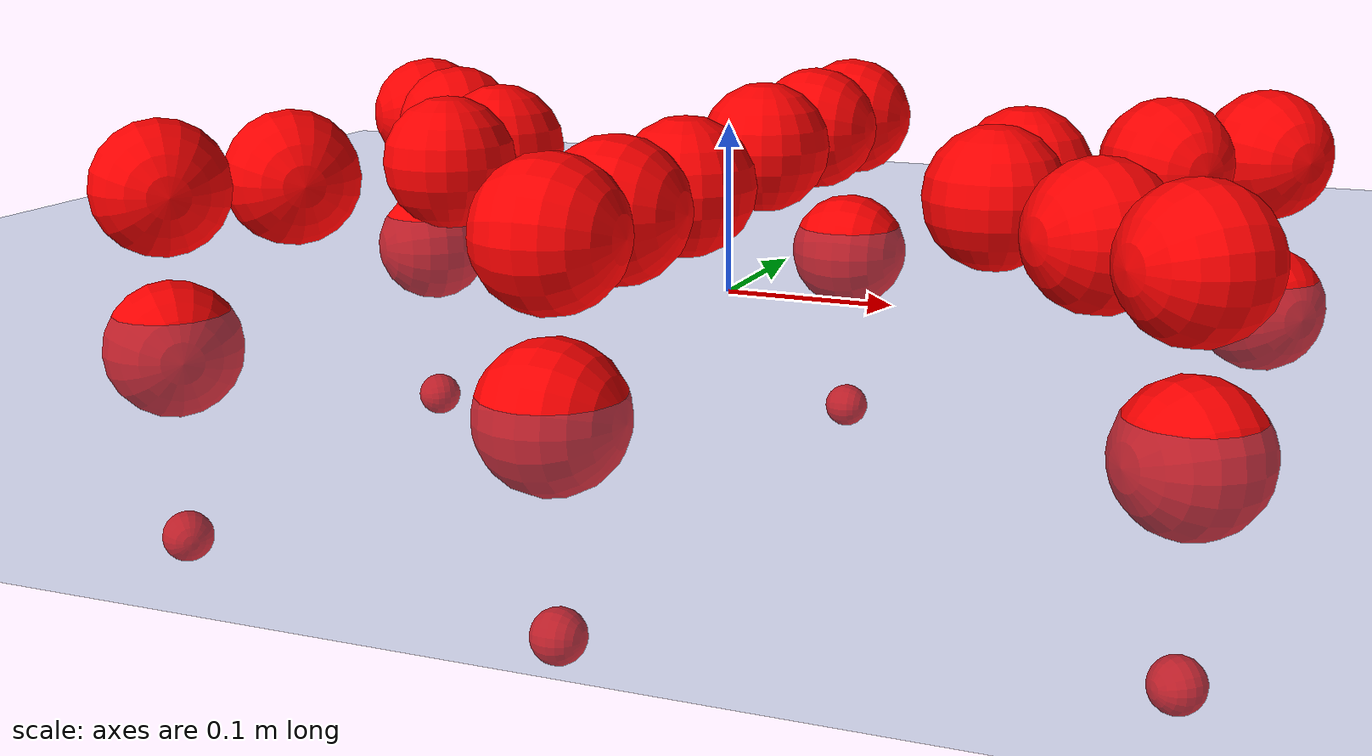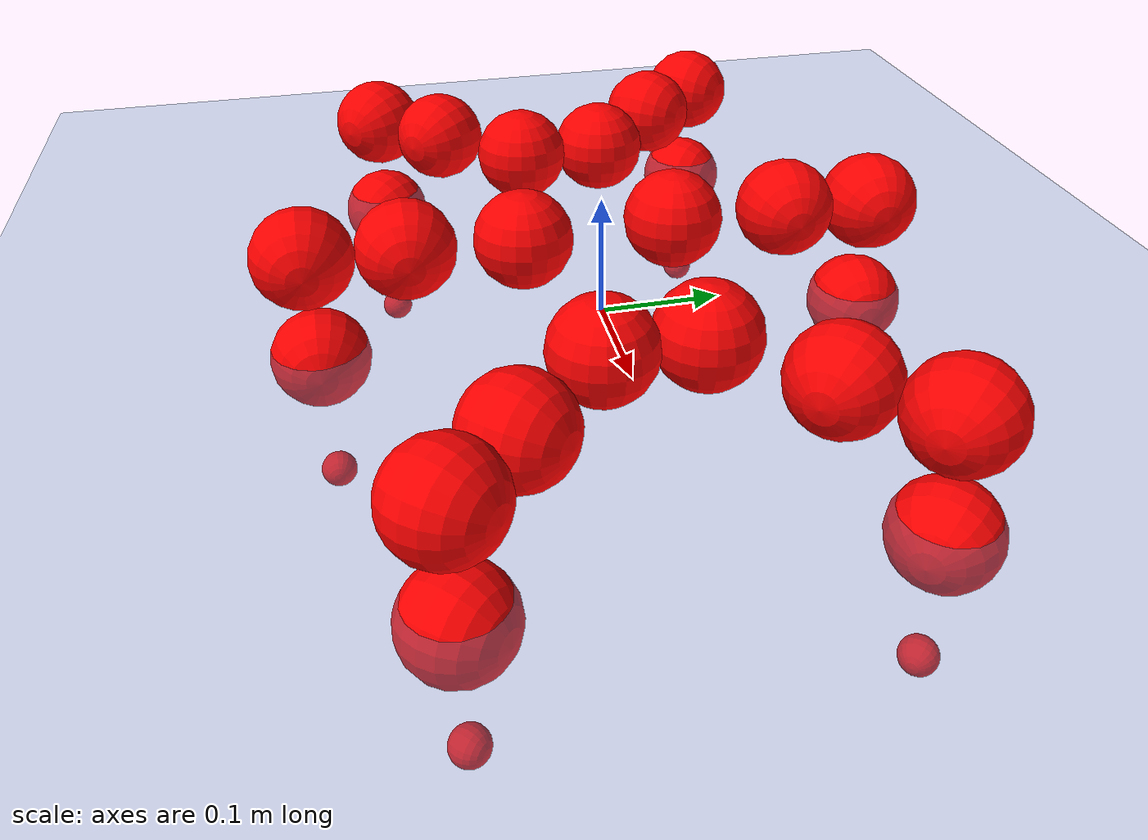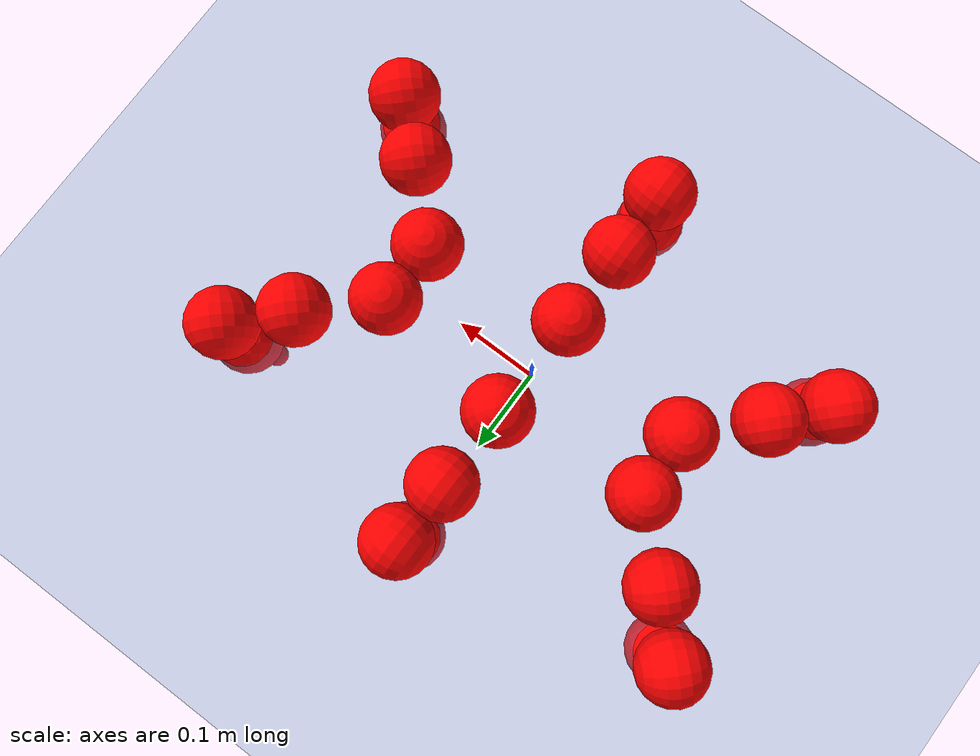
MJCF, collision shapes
<mujoco model="Golem">
  <compiler angle="radian" assetdir="assets" balanceinertia="true" inertiafromgeom="false"/>

  <option timestep="0.005" density="1.2" viscosity="2e-05"/>

  <size nkey="1"/>

  <visual>
    <quality shadowsize="8192"/>
    <map shadowclip="0.5"/>
  </visual>

  <default>
    <default class="/">
      <joint armature="0.01" damping="0.01" frictionloss="0.01"/>
      <geom contype="0" conaffinity="0" group="1" solref="-1000 -80"/>
      <site size="0.01 0.005 0.005" group="5"/>
      <general forcelimited="true" biastype="affine" gainprm="25" biasprm="0 -25 -0.5"/>
      <default class="visual">
        <geom type="mesh" group="2"/>
      </default>
      <default class="collision">
        <geom group="3"/>
      </default>
      <default class="foot">
        <geom size="0.01 0 0" condim="6" group="4" priority="1" solimp="0.015 1 0.01"/>
      </default>
      <default class="reward_collision_sphere">
        <geom group="5" rgba="1 0 0 1"/>
      </default>
    </default>
  </default>

  <asset>
    <texture type="skybox" colorspace="auto" name="//unnamed_texture_0" builtin="gradient" rgb1="0.95 0.95 0.95" rgb2="0.95 0.95 0.95" width="100" height="600"/>
    <texture type="2d" colorspace="auto" name="texplane" builtin="checker" rgb1="0.345 0.575 0.748" rgb2="0.345 0.575 0.748" markrgb="1 1 1" width="512" height="512"/>
    <material name="MatPlane" class="/" texture="texplane" texuniform="true" texrepeat="2 2" specular="0.9"/>
    <mesh name="body" class="/" file="body.stl" scale="0.001 0.001 0.001"/>
    <mesh name="coxa" class="/" file="coxa.stl" scale="0.001 0.001 0.001"/>
    <mesh name="femur" class="/" file="femur.stl" scale="0.001 0.001 0.001"/>
    <mesh name="tibia" class="/" file="tibia.stl" scale="0.001 0.001 0.001"/>
    <mesh name="tarsus" class="/" file="tarsus.stl" scale="0.001 0.001 0.001"/>
  </asset>

  <worldbody>
    <geom name="floor" class="/" size="100 100 0.125" type="plane" group="0" material="MatPlane"/>
    <light name="toplight_shadow" class="/" pos="0 0 5" dir="0.0990148 0.0990148 -0.990148" type="directional" ambient="0.04 0.04 0.04" diffuse="0.55 0.55 0.55" specular="0.12 0.12 0.12"/>
    <light name="toplight_fill" class="/" pos="0 0 5" dir="0.0990148 0.0990148 -0.990148" type="directional" castshadow="false" ambient="0.04 0.04 0.04" diffuse="0.3 0.3 0.3" specular="0.08 0.08 0.08"/>
    <body name="trunk" pos="-0.00152647 -0.000616136 -0.00231123" quat="1 0.000226284 0.00014128 -5.82449e-05">
      <inertial pos="0.00237484 -0.00046109 -8.81719e-05" quat="0.999907 -0.00565194 -0.00651355 0.0105767" mass="3.68479" diaginertia="0.0129905 0.00181752 0.025083"/>
      <joint name="//unnamed_joint_0" type="free"/>
      <geom name="//unnamed_geom_1" class="/" pos="0 0 0.0768637" quat="1 0 0 0" type="mesh" rgba="0.9 0.9 0.9 1" mesh="body"/>
      <site name="imu" class="/" pos="0.134388 0.00452925 0.119074" size="0.00989629"/>
      <camera name="track" class="/" pos="0 -1.4146 0" quat="0.707107 0.707107 0 0" mode="trackcom"/>
      <camera name="ego_camera" class="/" pos="0.137877 0 0.1201" quat="-0.5 -0.5 0.5 0.5"/>
      <body name="coxa_RR" pos="-0.186722 -0.0574444 0.0757412" quat="0.382598 -0.000284818 -0.00017854 -0.923915">
        <inertial pos="-0.000852325 -0.00235892 -0.000368069" quat="0.999992 0.00271909 -0.00265163 0.0015514" mass="0.189465" diaginertia="0.0126849 0.00178996 0.0245031"/>
        <joint name="coxa_joint_RR" class="/" pos="0 0 0" axis="0.00418204 -0.00195547 -0.999989" stiffness="0.00661351" range="-3.14287 3.08737" armature="0.00885945" damping="0.00533985" frictionloss="0.0093747"/>
        <geom name="//unnamed_geom_2" class="/" type="mesh" rgba="0.2 0.2 0.2 1" mesh="coxa"/>
        <geom name="//unnamed_geom_3" class="reward_collision_sphere" size="0.0395852" pos="-0.0318177 0 0"/>
        <body name="femur_RR" pos="0.0619663 0.00158164 -0.00270479" quat="0.500006 -0.500028 0.499675 0.500291">
          <inertial pos="0.000687539 0.00192327 -0.00202028" quat="0.999998 -0.00069688 1.00422e-05 0.00207431" mass="0.1945" diaginertia="0.0134977 0.00180005 0.0253053"/>
          <joint name="femur_joint_RR" class="/" pos="0 0 0" axis="0.000997644 0.000498229 -0.999999" range="-3.14875 3.08672" armature="0.00859282" damping="0.00127255" frictionloss="0.0112327"/>
          <geom name="//unnamed_geom_4" class="/" type="mesh" rgba="0.9 0.9 0.9 1" mesh="femur"/>
          <geom name="//unnamed_geom_5" class="reward_collision_sphere" size="0.0395852"/>
          <body name="tibia_RR" pos="0.000623424 -0.0737116 0.00325306" quat="-0.000648188 1 -9.37887e-06 0.000523745">
            <inertial pos="-0.00271193 -0.0021713 -0.000174144" quat="0.999903 -0.00943404 0.0102107 -0.000333575" mass="0.19405" diaginertia="0.0131038 0.00180843 0.0256223"/>
            <joint name="tibia_joint_RR" class="/" pos="0 0 0" axis="-0.00382761 -0.00677477 0.99997" stiffness="0.00442753" range="-3.1887 3.11879" armature="0.00865141" damping="0" frictionloss="0.00943358"/>
            <geom name="//unnamed_geom_6" class="/" type="mesh" rgba="0.2 0.2 0.2 1" mesh="tibia"/>
            <geom name="//unnamed_geom_7" class="reward_collision_sphere" size="0.0395852"/>
            <body name="tarsus_RR" pos="0.0927495 -0.000529662 -0.0017866" quat="1 8.28238e-05 -7.68439e-05 0.000155867">
              <inertial pos="0.0622701 0.00296117 -0.00259074" quat="0.497198 0.501701 0.499325 0.501762" mass="0.192713" diaginertia="0.0131794 0.0017891 0.0245733"/>
              <joint name="tarsus_joint_RR" class="/" pos="0 0 0" axis="0.00272792 0.00213816 0.999994" range="-3.16307 3.14049" armature="0.0113925" damping="0.0031442" frictionloss="0.0112871"/>
              <geom name="//unnamed_geom_8" class="/" type="mesh" rgba="0.9 0.9 0.9 1" mesh="tarsus"/>
              <geom name="foot_1" class="foot" size="0.00877774" pos="0.118786 0 0" quat="0 -0.707107 0 0.707107"/>
              <geom name="//unnamed_geom_10" class="reward_collision_sphere" size="0.0395852"/>
              <geom name="//unnamed_geom_11" class="reward_collision_sphere" size="0.0148444" pos="0.114014 0 0"/>
              <site name="foot_1" class="foot" pos="0.118786 0 0" quat="0 -0.707107 0 0.707107" size="0.00989629"/>
            </body>
          </body>
        </body>
      </body>
      <body name="coxa_RM" pos="0.000510598 -0.0936463 0.0755492" quat="0.706441 6.16221e-05 0.000525184 -0.707772">
        <inertial pos="-0.00269672 -2.6473e-05 -0.0010846" quat="0.999986 -0.00200256 -0.0040821 0.00282588" mass="0.189067" diaginertia="0.0132643 0.00172842 0.0248221"/>
        <joint name="coxa_joint_RM" class="/" pos="0 0 0" axis="-0.00112375 0.000147474 -0.999999" range="-3.18111 3.13291" armature="0.00960419" damping="0.0112945" frictionloss="0.00986707"/>
        <geom name="//unnamed_geom_12" class="/" type="mesh" rgba="0.2 0.2 0.2 1" mesh="coxa"/>
        <geom name="//unnamed_geom_13" class="reward_collision_sphere" size="0.0395852" pos="-0.0318177 0 0"/>
        <body name="femur_RM" pos="0.0593575 1.44122e-05 0.00231411" quat="0.499601 -0.499712 0.499531 0.501154">
          <inertial pos="0.00133813 -0.00124537 0.000904519" quat="0.999906 -0.00806443 0.00769157 0.00802791" mass="0.199906" diaginertia="0.0138618 0.00176826 0.0261107"/>
          <joint name="femur_joint_RM" class="/" pos="0 0 0" axis="-0.000494145 -0.00203751 -0.999998" range="-3.14779 3.13313" armature="0.00946221" damping="0.00651808" frictionloss="0.00941562"/>
          <geom name="//unnamed_geom_14" class="/" type="mesh" rgba="0.9 0.9 0.9 1" mesh="femur"/>
          <geom name="//unnamed_geom_15" class="reward_collision_sphere" size="0.0395852"/>
          <body name="tibia_RM" pos="-0.00252436 -0.0773354 0.00197674" quat="0.000318869 1 -0.0003573 -0.000359674">
            <inertial pos="-0.000597591 0.00174056 -0.000111681" quat="0.999994 0.00078447 0.00305388 0.001231" mass="0.199765" diaginertia="0.0138431 0.00182058 0.0264102"/>
            <joint name="tibia_joint_RM" class="/" pos="0 0 0" axis="-0.0104109 0.00204982 0.999944" range="-3.08708 3.10546" armature="0.0107664" damping="0.00146622" frictionloss="0.00969153"/>
            <geom name="//unnamed_geom_16" class="/" type="mesh" rgba="0.2 0.2 0.2 1" mesh="tibia"/>
            <geom name="//unnamed_geom_17" class="reward_collision_sphere" size="0.0395852"/>
            <body name="tarsus_RM" pos="0.0907808 -0.00257322 0.00271165" quat="0.999999 -0.000214329 0.00131952 -0.000329287">
              <inertial pos="0.0648164 0.00249314 0.00097306" quat="0.499237 0.499201 0.500899 0.50066" mass="0.182412" diaginertia="0.0128928 0.00169365 0.0236176"/>
              <joint name="tarsus_joint_RM" class="/" pos="0 0 0" axis="-0.0026272 -0.0106972 0.999939" stiffness="0.00187136" range="-3.14862 3.15537" armature="0.0109748" damping="0.00413545" frictionloss="0.00996222"/>
              <geom name="//unnamed_geom_18" class="/" type="mesh" rgba="0.9 0.9 0.9 1" mesh="tarsus"/>
              <geom name="foot_2" class="foot" size="0.0102762" pos="0.118786 0 0" quat="0 -0.707107 0 0.707107"/>
              <geom name="//unnamed_geom_20" class="reward_collision_sphere" size="0.0395852"/>
              <geom name="//unnamed_geom_21" class="reward_collision_sphere" size="0.0148444" pos="0.114014 0 0"/>
              <site name="foot_2" class="foot" pos="0.118786 0 0" quat="0 -0.707107 0 0.707107" size="0.00989629"/>
            </body>
          </body>
        </body>
      </body>
      <body name="coxa_RF" pos="0.191677 -0.0603769 0.0762138" quat="0.92384 -0.0012356 -0.000395946 -0.382777">
        <inertial pos="-0.00273211 -0.000596789 0.00289754" quat="0.99994 -0.0084516 0.00150484 0.00681029" mass="0.198474" diaginertia="0.013277 0.00177047 0.0246949"/>
        <joint name="coxa_joint_RF" class="/" pos="0 0 0" axis="-0.00278856 0.00570648 -0.99998" range="-3.18529 3.13977" armature="0.00838481" damping="0.0184143" frictionloss="0.0111028"/>
        <geom name="//unnamed_geom_22" class="/" type="mesh" rgba="0.2 0.2 0.2 1" mesh="coxa"/>
        <geom name="//unnamed_geom_23" class="reward_collision_sphere" size="0.0395852" pos="-0.0318177 0 0"/>
        <body name="femur_RF" pos="0.065006 0.000334258 -0.00296776" quat="0.499291 -0.499468 0.500187 0.501052">
          <inertial pos="0.0013641 -0.00174835 -0.000926196" quat="0.999986 -0.00476957 -0.000516918 -0.00224985" mass="0.182551" diaginertia="0.0134987 0.00172314 0.0237012"/>
          <joint name="femur_joint_RF" class="/" pos="0 0 0" axis="0.000825881 0.0017556 -0.999998" range="-3.11981 3.08837" armature="0.00909441" damping="0" frictionloss="0.00887356"/>
          <geom name="//unnamed_geom_24" class="/" type="mesh" rgba="0.9 0.9 0.9 1" mesh="femur"/>
          <geom name="//unnamed_geom_25" class="reward_collision_sphere" size="0.0395852"/>
          <body name="tibia_RF" pos="-0.000873017 -0.0737636 0.00227195" quat="-8.72301e-06 1 -0.000154648 1.00528e-06">
            <inertial pos="-0.00229351 0.000622545 -8.90755e-06" quat="0.999998 -0.000590958 0.00197325 -0.000108846" mass="0.185637" diaginertia="0.0125417 0.00171717 0.0241935"/>
            <joint name="tibia_joint_RF" class="/" pos="0 0 0" axis="0.010547 -0.0050402 0.999932" range="-3.09153 3.12981" armature="0.00990729" damping="0" frictionloss="0.0110189"/>
            <geom name="//unnamed_geom_26" class="/" type="mesh" rgba="0.2 0.2 0.2 1" mesh="tibia"/>
            <geom name="//unnamed_geom_27" class="reward_collision_sphere" size="0.0395852"/>
            <body name="tarsus_RF" pos="0.0926275 0.00049591 -0.00266359" quat="0.999999 3.70895e-05 -0.00130676 0.000331108">
              <inertial pos="0.0611719 -0.00227232 -3.4953e-05" quat="0.500898 0.497233 0.494909 0.506879" mass="0.187746" diaginertia="0.0130812 0.00178839 0.0237334"/>
              <joint name="tarsus_joint_RF" class="/" pos="0 0 0" axis="-0.00712632 -0.00892016 0.999935" range="-3.13305 3.13619" armature="0.00874688" damping="0" frictionloss="0.00852095"/>
              <geom name="//unnamed_geom_28" class="/" type="mesh" rgba="0.9 0.9 0.9 1" mesh="tarsus"/>
              <geom name="foot_3" class="foot" size="0.00987205" pos="0.118786 0 0" quat="0 -0.707107 0 0.707107"/>
              <geom name="//unnamed_geom_30" class="reward_collision_sphere" size="0.0395852"/>
              <geom name="//unnamed_geom_31" class="reward_collision_sphere" size="0.0148444" pos="0.114014 0 0"/>
              <site name="foot_3" class="foot" pos="0.118786 0 0" quat="0 -0.707107 0 0.707107" size="0.00989629"/>
            </body>
          </body>
        </body>
      </body>
      <body name="coxa_LR" pos="-0.191091 0.0602775 0.074451" quat="0.382584 -0.000104537 -4.90981e-05 0.923921">
        <inertial pos="0.00111563 -0.000198252 0.000996386" quat="0.999928 -0.00586619 -0.00683125 0.00791096" mass="0.19245" diaginertia="0.0135008 0.00183446 0.0249886"/>
        <joint name="coxa_joint_LR" class="/" pos="0 0 0" axis="0.00492198 0.0128452 -0.999905" stiffness="0.0133027" range="-3.14803 3.17127" armature="0.0113536" damping="0.00797994" frictionloss="0.0102387"/>
        <geom name="//unnamed_geom_32" class="/" type="mesh" rgba="0.2 0.2 0.2 1" mesh="coxa"/>
        <geom name="//unnamed_geom_33" class="reward_collision_sphere" size="0.0395852" pos="-0.0318177 0 0"/>
        <body name="femur_LR" pos="0.0632075 0.00195671 0.00205542" quat="0.499355 -0.500552 0.500699 0.499393">
          <inertial pos="-0.00274045 -0.00246891 0.00238039" quat="1 -0.000167416 -0.00051995 -0.000175267" mass="0.20485" diaginertia="0.0140804 0.00187446 0.0254605"/>
          <joint name="femur_joint_LR" class="/" pos="0 0 0" axis="0.0125386 0.000510517 0.999921" range="-3.19432 3.08319" armature="0.0107399" damping="0" frictionloss="0.00851218"/>
          <geom name="//unnamed_geom_34" class="/" type="mesh" rgba="0.9 0.9 0.9 1" mesh="femur"/>
          <geom name="//unnamed_geom_35" class="reward_collision_sphere" size="0.0395852"/>
          <body name="tibia_LR" pos="0.00200618 -0.0800906 -0.00143301" quat="6.52059e-05 1 -0.000198625 0.000480529">
            <inertial pos="-0.000456369 -0.00248826 0.000587889" quat="0.999954 0.0041559 0.00840868 -0.00194434" mass="0.180693" diaginertia="0.0125796 0.00175489 0.0234419"/>
            <joint name="tibia_joint_LR" class="/" pos="0 0 0" axis="0.0129475 -0.000772317 -0.999916" range="-3.13833 3.0851" armature="0.00988664" damping="0" frictionloss="0.0112242"/>
            <geom name="//unnamed_geom_36" class="/" type="mesh" rgba="0.2 0.2 0.2 1" mesh="tibia"/>
            <geom name="//unnamed_geom_37" class="reward_collision_sphere" size="0.0395852"/>
            <body name="tarsus_LR" pos="0.095674 -0.00173726 -0.00220194" quat="0.999999 -0.000873161 0.000972426 -5.76149e-05">
              <inertial pos="0.0621122 0.00202462 -0.00270553" quat="0.500993 0.500443 0.49914 0.499421" mass="0.188366" diaginertia="0.0135006 0.00182786 0.0249217"/>
              <joint name="tarsus_joint_LR" class="/" pos="0 0 0" axis="-0.00714043 0.00324371 -0.999969" range="-3.19792 3.15897" armature="0.00845457" damping="0.029219" frictionloss="0.009984"/>
              <geom name="//unnamed_geom_38" class="/" type="mesh" rgba="0.9 0.9 0.9 1" mesh="tarsus"/>
              <geom name="foot_4" class="foot" size="0.00981613" pos="0.118786 0 0" quat="0.707107 0 -0.707107 0"/>
              <geom name="//unnamed_geom_40" class="reward_collision_sphere" size="0.0395852"/>
              <geom name="//unnamed_geom_41" class="reward_collision_sphere" size="0.0148444" pos="0.114014 0 0"/>
              <site name="foot_4" class="foot" pos="0.118786 0 0" quat="0.707107 0 -0.707107 0" size="0.00989629"/>
            </body>
          </body>
        </body>
      </body>
      <body name="coxa_LM" pos="0.00187976 0.0911049 0.0805778" quat="0.707013 8.75391e-05 -2.32626e-05 0.707201">
        <inertial pos="0.00280992 0.000640552 0.00148501" quat="0.999951 -0.00728626 -0.00329498 -0.00578491" mass="0.188625" diaginertia="0.0140075 0.00175161 0.0251728"/>
        <joint name="coxa_joint_LM" class="/" pos="0 0 0" axis="-0.00131296 -0.0119573 -0.999928" range="-3.10915 3.18089" armature="0.00982575" damping="0.00103177" frictionloss="0.00962482"/>
        <geom name="//unnamed_geom_42" class="/" type="mesh" rgba="0.2 0.2 0.2 1" mesh="coxa"/>
        <geom name="//unnamed_geom_43" class="reward_collision_sphere" size="0.0395852" pos="-0.0318177 0 0"/>
        <body name="femur_LM" pos="0.0625668 -0.000828568 -0.000644515" quat="0.500355 -0.498763 0.500266 0.500613">
          <inertial pos="0.0028066 0.00104981 -0.00269249" quat="0.999998 0.000837003 -0.00131814 -0.00120742" mass="0.206857" diaginertia="0.013999 0.00183111 0.0267771"/>
          <joint name="femur_joint_LM" class="/" pos="0 0 0" axis="-0.00128287 0.0130611 0.999914" stiffness="0.00906009" range="-3.19126 3.0875" armature="0.0101455" damping="0.0102053" frictionloss="0.0112226"/>
          <geom name="//unnamed_geom_44" class="/" type="mesh" rgba="0.9 0.9 0.9 1" mesh="femur"/>
          <geom name="//unnamed_geom_45" class="reward_collision_sphere" size="0.0395852"/>
          <body name="tibia_LM" pos="0.00106713 -0.0730302 -0.00214104" quat="1.22923e-08 1 2.42688e-06 -0.000135321">
            <inertial pos="0.00286594 0.000607943 0.00013558" quat="0.999991 0.00421793 -0.000642233 0.000645596" mass="0.202534" diaginertia="0.0137208 0.00177351 0.0264681"/>
            <joint name="tibia_joint_LM" class="/" pos="0 0 0" axis="-0.00665897 -0.0111433 -0.999916" range="-3.13793 3.14386" armature="0.00854847" damping="0" frictionloss="0.00980667"/>
            <geom name="//unnamed_geom_46" class="/" type="mesh" rgba="0.2 0.2 0.2 1" mesh="tibia"/>
            <geom name="//unnamed_geom_47" class="reward_collision_sphere" size="0.0395852"/>
            <body name="tarsus_LM" pos="0.0951254 -0.000823776 -0.000876202" quat="1 2.62851e-06 -4.09507e-06 -1.0622e-05">
              <inertial pos="0.0641744 0.000413089 0.00281032" quat="0.499194 0.507444 0.498269 0.49501" mass="0.189968" diaginertia="0.0130495 0.00183197 0.0248214"/>
              <joint name="tarsus_joint_LM" class="/" pos="0 0 0" axis="-0.00391139 -0.00821464 -0.999959" range="-3.1499 3.13648" armature="0.0102689" damping="0.0150793" frictionloss="0.00978909"/>
              <geom name="//unnamed_geom_48" class="/" type="mesh" rgba="0.9 0.9 0.9 1" mesh="tarsus"/>
              <geom name="foot_5" class="foot" size="0.00923786" pos="0.118786 0 0" quat="0.707107 0 -0.707107 0"/>
              <geom name="//unnamed_geom_50" class="reward_collision_sphere" size="0.0395852"/>
              <geom name="//unnamed_geom_51" class="reward_collision_sphere" size="0.0148444" pos="0.114014 0 0"/>
              <site name="foot_5" class="foot" pos="0.118786 0 0" quat="0.707107 0 -0.707107 0" size="0.00989629"/>
            </body>
          </body>
        </body>
      </body>
      <body name="coxa_LF" pos="0.191235 0.0574631 0.0769792" quat="0.923634 -0.000414653 -0.000982902 0.383273">
        <inertial pos="-0.00040016 0.000565381 0.00291476" quat="1 0.000280218 0.000261894 0.000180425" mass="0.191203" diaginertia="0.0136348 0.00170854 0.0247179"/>
        <joint name="coxa_joint_LF" class="/" pos="0 0 0" axis="0.000494119 -0.0159279 -0.999873" range="-3.15801 3.11687" armature="0.00941913" damping="0.0230057" frictionloss="0.00850425"/>
        <geom name="//unnamed_geom_52" class="/" type="mesh" rgba="0.2 0.2 0.2 1" mesh="coxa"/>
        <geom name="//unnamed_geom_53" class="reward_collision_sphere" size="0.0395852" pos="-0.0318177 0 0"/>
        <body name="femur_LF" pos="0.0649298 -0.00180066 5.77996e-05" quat="0.499957 -0.500519 0.499858 0.499666">
          <inertial pos="6.105e-05 -0.000175095 0.00259414" quat="0.99991 -0.00596214 0.0112205 0.00419247" mass="0.198086" diaginertia="0.0129637 0.00177822 0.0249211"/>
          <joint name="femur_joint_LF" class="/" pos="0 0 0" axis="-0.0156041 -0.000924191 0.999878" stiffness="0.00120034" range="-3.16261 3.1442" armature="0.00967731" damping="0.00617508" frictionloss="0.011245"/>
          <geom name="//unnamed_geom_54" class="/" type="mesh" rgba="0.9 0.9 0.9 1" mesh="femur"/>
          <geom name="//unnamed_geom_55" class="reward_collision_sphere" size="0.0395852"/>
          <body name="tibia_LF" pos="-0.000262376 -0.0760488 0.00260774" quat="-0.000888642 0.999999 0.000697799 -0.000169627">
            <inertial pos="-0.000674224 -0.000249934 -0.00254094" quat="0.999925 -0.00602345 -0.00307855 -0.0101685" mass="0.202207" diaginertia="0.0140036 0.00176773 0.0249511"/>
            <joint name="tibia_joint_LF" class="/" pos="0 0 0" axis="0.00163653 -0.000181054 -0.999999" range="-3.10399 3.16992" armature="0.010341" damping="0.0154232" frictionloss="0.00994438"/>
            <geom name="//unnamed_geom_56" class="/" type="mesh" rgba="0.2 0.2 0.2 1" mesh="tibia"/>
            <geom name="//unnamed_geom_57" class="reward_collision_sphere" size="0.0395852"/>
            <body name="tarsus_LF" pos="0.0953427 0.00325934 -0.00127112" quat="1 -0.000623769 0.0002799 0.000650411">
              <inertial pos="0.0617199 -0.000194196 0.000489003" quat="0.500088 0.500238 0.500005 0.499669" mass="0.182164" diaginertia="0.0126626 0.00166088 0.024788"/>
              <joint name="tarsus_joint_LF" class="/" pos="0 0 0" axis="-0.000788424 -0.0144641 -0.999895" range="-3.14285 3.08263" armature="0.01133" damping="0.02113" frictionloss="0.0108724"/>
              <geom name="//unnamed_geom_58" class="/" type="mesh" rgba="0.9 0.9 0.9 1" mesh="tarsus"/>
              <geom name="foot_6" class="foot" size="0.00984715" pos="0.118786 0 0" quat="0.707107 0 -0.707107 0"/>
              <geom name="//unnamed_geom_60" class="reward_collision_sphere" size="0.0395852"/>
              <geom name="//unnamed_geom_61" class="reward_collision_sphere" size="0.0148444" pos="0.114014 0 0"/>
              <site name="foot_6" class="foot" pos="0.118786 0 0" quat="0.707107 0 -0.707107 0" size="0.00989629"/>
            </body>
          </body>
        </body>
      </body>
    </body>
  </worldbody>

  <contact>
    <pair class="/" geom1="floor" geom2="foot_1" name="//unnamed_contact_0"/>
    <pair class="/" geom1="floor" geom2="foot_2" name="//unnamed_contact_1"/>
    <pair class="/" geom1="floor" geom2="foot_3" name="//unnamed_contact_2"/>
    <pair class="/" geom1="floor" geom2="foot_4" name="//unnamed_contact_3"/>
    <pair class="/" geom1="floor" geom2="foot_5" name="//unnamed_contact_4"/>
    <pair class="/" geom1="floor" geom2="foot_6" name="//unnamed_contact_5"/>
  </contact>

  <actuator>
    <general name="coxa_joint_RR" class="/" joint="coxa_joint_RR" forcerange="-7.89285 7.89285" gainprm="23.3383" biasprm="0 -23.3383 -0.510032"/>
    <general name="femur_joint_RR" class="/" joint="femur_joint_RR" forcerange="-7.97593 7.97593" gainprm="23.3383" biasprm="0 -23.3383 -0.510032"/>
    <general name="tibia_joint_RR" class="/" joint="tibia_joint_RR" forcerange="-6.46578 6.46578" gainprm="23.3383" biasprm="0 -23.3383 -0.510032"/>
    <general name="tarsus_joint_RR" class="/" joint="tarsus_joint_RR" forcerange="-6.4638 6.4638" gainprm="23.3383" biasprm="0 -23.3383 -0.510032"/>
    <general name="coxa_joint_RM" class="/" joint="coxa_joint_RM" forcerange="-6.53014 6.53014" gainprm="23.3383" biasprm="0 -23.3383 -0.510032"/>
    <general name="femur_joint_RM" class="/" joint="femur_joint_RM" forcerange="-6.97195 6.97195" gainprm="23.3383" biasprm="0 -23.3383 -0.510032"/>
    <general name="tibia_joint_RM" class="/" joint="tibia_joint_RM" forcerange="-7.07699 7.07699" gainprm="23.3383" biasprm="0 -23.3383 -0.510032"/>
    <general name="tarsus_joint_RM" class="/" joint="tarsus_joint_RM" forcerange="-7.30868 7.30868" gainprm="23.3383" biasprm="0 -23.3383 -0.510032"/>
    <general name="coxa_joint_RF" class="/" joint="coxa_joint_RF" forcerange="-6.97558 6.97558" gainprm="23.3383" biasprm="0 -23.3383 -0.510032"/>
    <general name="femur_joint_RF" class="/" joint="femur_joint_RF" forcerange="-7.72891 7.72891" gainprm="23.3383" biasprm="0 -23.3383 -0.510032"/>
    <general name="tibia_joint_RF" class="/" joint="tibia_joint_RF" forcerange="-7.896 7.896" gainprm="23.3383" biasprm="0 -23.3383 -0.510032"/>
    <general name="tarsus_joint_RF" class="/" joint="tarsus_joint_RF" forcerange="-7.94623 7.94623" gainprm="23.3383" biasprm="0 -23.3383 -0.510032"/>
    <general name="coxa_joint_LR" class="/" joint="coxa_joint_LR" forcerange="-7.13947 7.13947" gainprm="23.3383" biasprm="0 -23.3383 -0.510032"/>
    <general name="femur_joint_LR" class="/" joint="femur_joint_LR" forcerange="-7.36286 7.36286" gainprm="23.3383" biasprm="0 -23.3383 -0.510032"/>
    <general name="tibia_joint_LR" class="/" joint="tibia_joint_LR" forcerange="-7.7755 7.7755" gainprm="23.3383" biasprm="0 -23.3383 -0.510032"/>
    <general name="tarsus_joint_LR" class="/" joint="tarsus_joint_LR" forcerange="-7.89493 7.89493" gainprm="23.3383" biasprm="0 -23.3383 -0.510032"/>
    <general name="coxa_joint_LM" class="/" joint="coxa_joint_LM" forcerange="-7.11688 7.11688" gainprm="23.3383" biasprm="0 -23.3383 -0.510032"/>
    <general name="femur_joint_LM" class="/" joint="femur_joint_LM" forcerange="-7.49871 7.49871" gainprm="23.3383" biasprm="0 -23.3383 -0.510032"/>
    <general name="tibia_joint_LM" class="/" joint="tibia_joint_LM" forcerange="-7.22991 7.22991" gainprm="23.3383" biasprm="0 -23.3383 -0.510032"/>
    <general name="tarsus_joint_LM" class="/" joint="tarsus_joint_LM" forcerange="-6.93747 6.93747" gainprm="23.3383" biasprm="0 -23.3383 -0.510032"/>
    <general name="coxa_joint_LF" class="/" joint="coxa_joint_LF" forcerange="-7.2538 7.2538" gainprm="23.3383" biasprm="0 -23.3383 -0.510032"/>
    <general name="femur_joint_LF" class="/" joint="femur_joint_LF" forcerange="-7.9593 7.9593" gainprm="23.3383" biasprm="0 -23.3383 -0.510032"/>
    <general name="tibia_joint_LF" class="/" joint="tibia_joint_LF" forcerange="-7.98246 7.98246" gainprm="23.3383" biasprm="0 -23.3383 -0.510032"/>
    <general name="tarsus_joint_LF" class="/" joint="tarsus_joint_LF" forcerange="-6.9633 6.9633" gainprm="23.3383" biasprm="0 -23.3383 -0.510032"/>
  </actuator>

  <sensor>
    <gyro site="imu" name="imu_angular_velocity"/>
    <velocimeter site="imu" name="imu_linear_velocity"/>
    <framelinvel objtype="site" objname="foot_1" name="foot_1_global_linear_velocity"/>
    <framelinvel objtype="site" objname="foot_2" name="foot_2_global_linear_velocity"/>
    <framelinvel objtype="site" objname="foot_3" name="foot_3_global_linear_velocity"/>
    <framelinvel objtype="site" objname="foot_4" name="foot_4_global_linear_velocity"/>
    <framelinvel objtype="site" objname="foot_5" name="foot_5_global_linear_velocity"/>
    <framelinvel objtype="site" objname="foot_6" name="foot_6_global_linear_velocity"/>
  </sensor>

  <keyframe>
    <key name="home" qpos="0 0 0.1457 1 0 0 0 0 0 0 0 0 0 0 0 0 0 0 0 0 0 0 0 0 0 0 0 0 0 0 0"/>
  </keyframe>
</mujoco>
